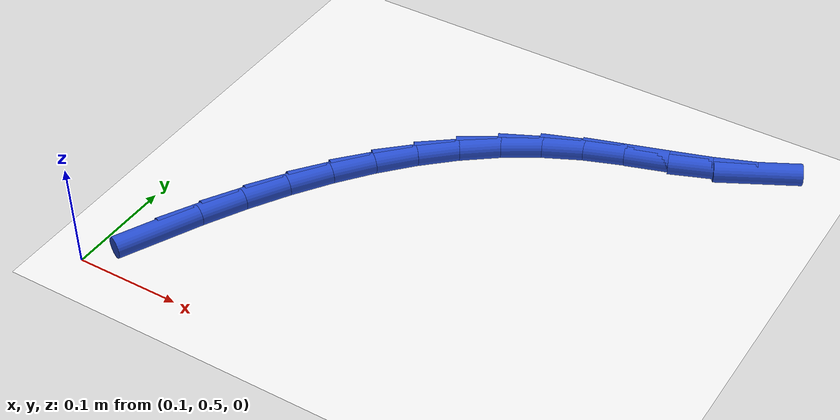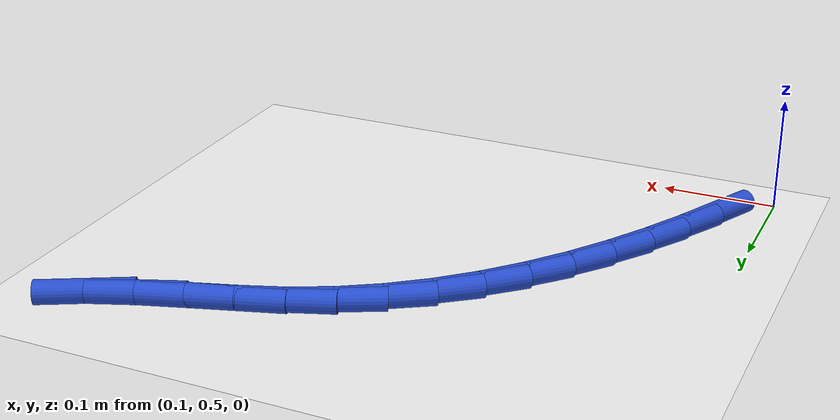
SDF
<sdf version="1.6">
 <world name="default">
  <model name="ground_plane">
   <static>1</static>
   <link name="link">
    <collision name="collision">
     <geometry><plane><normal>0 0 1</normal><size>100 100</size></plane></geometry>
     <surface><friction><ode><mu>100</mu><mu2>50</mu2></ode></friction></surface>
    </collision>
    <visual name="visual">
     <cast_shadows>0</cast_shadows>
     <geometry><plane><normal>0 0 1</normal><size>100 100</size></plane></geometry>
     <material>
      <script><uri>file://media/materials/scripts/gazebo.material</uri><name>Gazebo/WhiteGlow</name></script>
     </material>
    </visual>
   </link>
  </model>
  <model name="line">
   <link name="link_14">
    <pose>0.13950459184330102 0.5547613887442162 0.01 0 1.57 1.1135589506615398</pose>
    <collision name="collision">
     <geometry><cylinder><radius>0.01</radius><length>0.08</length></cylinder></geometry>
    </collision>
    <visual name="visual">
     <material>
      <script><name>Gazebo/Blue</name><uri>file://media/materials/scripts/gazebo.material</uri></script>
     </material>
     <geometry><cylinder><radius>0.01</radius><length>0.08</length></cylinder></geometry>
    </visual>
   </link>
   <link name="link_15">
    <pose>0.15835973791792898 0.5930838671773445 0.01 0 1.57 1.069745301294318</pose>
    <collision name="collision">
     <geometry><cylinder><radius>0.01</radius><length>0.08</length></cylinder></geometry>
    </collision>
    <visual name="visual">
     <material>
      <script><name>Gazebo/Blue</name><uri>file://media/materials/scripts/gazebo.material</uri></script>
     </material>
     <geometry><cylinder><radius>0.01</radius><length>0.08</length></cylinder></geometry>
    </visual>
   </link>
   <link name="link_16">
    <pose>0.17864692847080063 0.6301267316341107 0.01 0 1.57 1.0198510211933867</pose>
    <collision name="collision">
     <geometry><cylinder><radius>0.01</radius><length>0.08</length></cylinder></geometry>
    </collision>
    <visual name="visual">
     <material>
      <script><name>Gazebo/Blue</name><uri>file://media/materials/scripts/gazebo.material</uri></script>
     </material>
     <geometry><cylinder><radius>0.01</radius><length>0.08</length></cylinder></geometry>
    </visual>
   </link>
   <link name="link_17">
    <pose>0.20044579376627192 0.665606273795691 0.01 0 1.57 0.9631217649171834</pose>
    <collision name="collision">
     <geometry><cylinder><radius>0.01</radius><length>0.08</length></cylinder></geometry>
    </collision>
    <visual name="visual">
     <material>
      <script><name>Gazebo/Blue</name><uri>file://media/materials/scripts/gazebo.material</uri></script>
     </material>
     <geometry><cylinder><radius>0.01</radius><length>0.08</length></cylinder></geometry>
    </visual>
   </link>
   <link name="link_18">
    <pose>0.22383596406869888 0.6992387853432618 0.01 0 1.57 0.8987772154755563</pose>
    <collision name="collision">
     <geometry><cylinder><radius>0.01</radius><length>0.08</length></cylinder></geometry>
    </collision>
    <visual name="visual">
     <material>
      <script><name>Gazebo/Blue</name><uri>file://media/materials/scripts/gazebo.material</uri></script>
     </material>
     <geometry><cylinder><radius>0.01</radius><length>0.08</length></cylinder></geometry>
    </visual>
   </link>
   <link name="link_19">
    <pose>0.24889706964243735 0.730740557957999 0.01 0 1.57 0.8260858051924862</pose>
    <collision name="collision">
     <geometry><cylinder><radius>0.01</radius><length>0.08</length></cylinder></geometry>
    </collision>
    <visual name="visual">
     <material>
      <script><name>Gazebo/Blue</name><uri>file://media/materials/scripts/gazebo.material</uri></script>
     </material>
     <geometry><cylinder><radius>0.01</radius><length>0.08</length></cylinder></geometry>
    </visual>
   </link>
   <link name="link_20">
    <pose>0.2757087407518434 0.7598278833210785 0.01 0 1.57 0.7444859754517545</pose>
    <collision name="collision">
     <geometry><cylinder><radius>0.01</radius><length>0.08</length></cylinder></geometry>
    </collision>
    <visual name="visual">
     <material>
      <script><name>Gazebo/Blue</name><uri>file://media/materials/scripts/gazebo.material</uri></script>
     </material>
     <geometry><cylinder><radius>0.01</radius><length>0.08</length></cylinder></geometry>
    </visual>
   </link>
   <link name="link_21">
    <pose>0.30435060766127275 0.7862170531136767 0.01 0 1.57 0.6537598464128989</pose>
    <collision name="collision">
     <geometry><cylinder><radius>0.01</radius><length>0.08</length></cylinder></geometry>
    </collision>
    <visual name="visual">
     <material>
      <script><name>Gazebo/Blue</name><uri>file://media/materials/scripts/gazebo.material</uri></script>
     </material>
     <geometry><cylinder><radius>0.01</radius><length>0.08</length></cylinder></geometry>
    </visual>
   </link>
   <link name="link_22">
    <pose>0.33490230063508153 0.8096243590169693 0.01 0 1.57 0.5542455697084279</pose>
    <collision name="collision">
     <geometry><cylinder><radius>0.01</radius><length>0.08</length></cylinder></geometry>
    </collision>
    <visual name="visual">
     <material>
      <script><name>Gazebo/Blue</name><uri>file://media/materials/scripts/gazebo.material</uri></script>
     </material>
     <geometry><cylinder><radius>0.01</radius><length>0.08</length></cylinder></geometry>
    </visual>
   </link>
   <link name="link_23">
    <pose>0.36744344993762573 0.8297660927121331 0.01 0 1.57 0.44706196624562294</pose>
    <collision name="collision">
     <geometry><cylinder><radius>0.01</radius><length>0.08</length></cylinder></geometry>
    </collision>
    <visual name="visual">
     <material>
      <script><name>Gazebo/Blue</name><uri>file://media/materials/scripts/gazebo.material</uri></script>
     </material>
     <geometry><cylinder><radius>0.01</radius><length>0.08</length></cylinder></geometry>
    </visual>
   </link>
   <link name="link_24">
    <pose>0.4020533655756618 0.8463593526339972 0.01 0 1.57 0.3491214503742008</pose>
    <collision name="collision">
     <geometry><cylinder><radius>0.01</radius><length>0.08</length></cylinder></geometry>
    </collision>
    <visual name="visual">
     <material>
      <script><name>Gazebo/Blue</name><uri>file://media/materials/scripts/gazebo.material</uri></script>
     </material>
     <geometry><cylinder><radius>0.01</radius><length>0.08</length></cylinder></geometry>
    </visual>
   </link>
   <link name="link_25">
    <pose>0.43859657393973084 0.8596622937527002 0.01 0 1.57 0.30171649680288076</pose>
    <collision name="collision">
     <geometry><cylinder><radius>0.01</radius><length>0.08</length></cylinder></geometry>
    </collision>
    <visual name="visual">
     <material>
      <script><name>Gazebo/Blue</name><uri>file://media/materials/scripts/gazebo.material</uri></script>
     </material>
     <geometry><cylinder><radius>0.01</radius><length>0.08</length></cylinder></geometry>
    </visual>
   </link>
   <link name="link_26">
    <pose>0.4763505105653126 0.8714119982933936 0.01 0 1.57 0.30918621106012206</pose>
    <collision name="collision">
     <geometry><cylinder><radius>0.01</radius><length>0.08</length></cylinder></geometry>
    </collision>
    <visual name="visual">
     <material>
      <script><name>Gazebo/Blue</name><uri>file://media/materials/scripts/gazebo.material</uri></script>
     </material>
     <geometry><cylinder><radius>0.01</radius><length>0.08</length></cylinder></geometry>
    </visual>
   </link>
   <link name="link_27">
    <pose>0.5144932133208002 0.8835959388895787 0.01 0 1.57 0.3695278509890474</pose>
    <collision name="collision">
     <geometry><cylinder><radius>0.01</radius><length>0.08</length></cylinder></geometry>
    </collision>
    <visual name="visual">
     <material>
      <script><name>Gazebo/Blue</name><uri>file://media/materials/scripts/gazebo.material</uri></script>
     </material>
     <geometry><cylinder><radius>0.01</radius><length>0.08</length></cylinder></geometry>
    </visual>
   </link>
   <link name="link_28">
    <pose>0.552202720074588 0.898201588174758 0.01 0 1.57 0.48078313941678147</pose>
    <collision name="collision">
     <geometry><cylinder><radius>0.01</radius><length>0.08</length></cylinder></geometry>
    </collision>
    <visual name="visual">
     <material>
      <script><name>Gazebo/Blue</name><uri>file://media/materials/scripts/gazebo.material</uri></script>
     </material>
     <geometry><cylinder><radius>0.01</radius><length>0.08</length></cylinder></geometry>
    </visual>
   </link>
  </model>
 </world>
</sdf>
